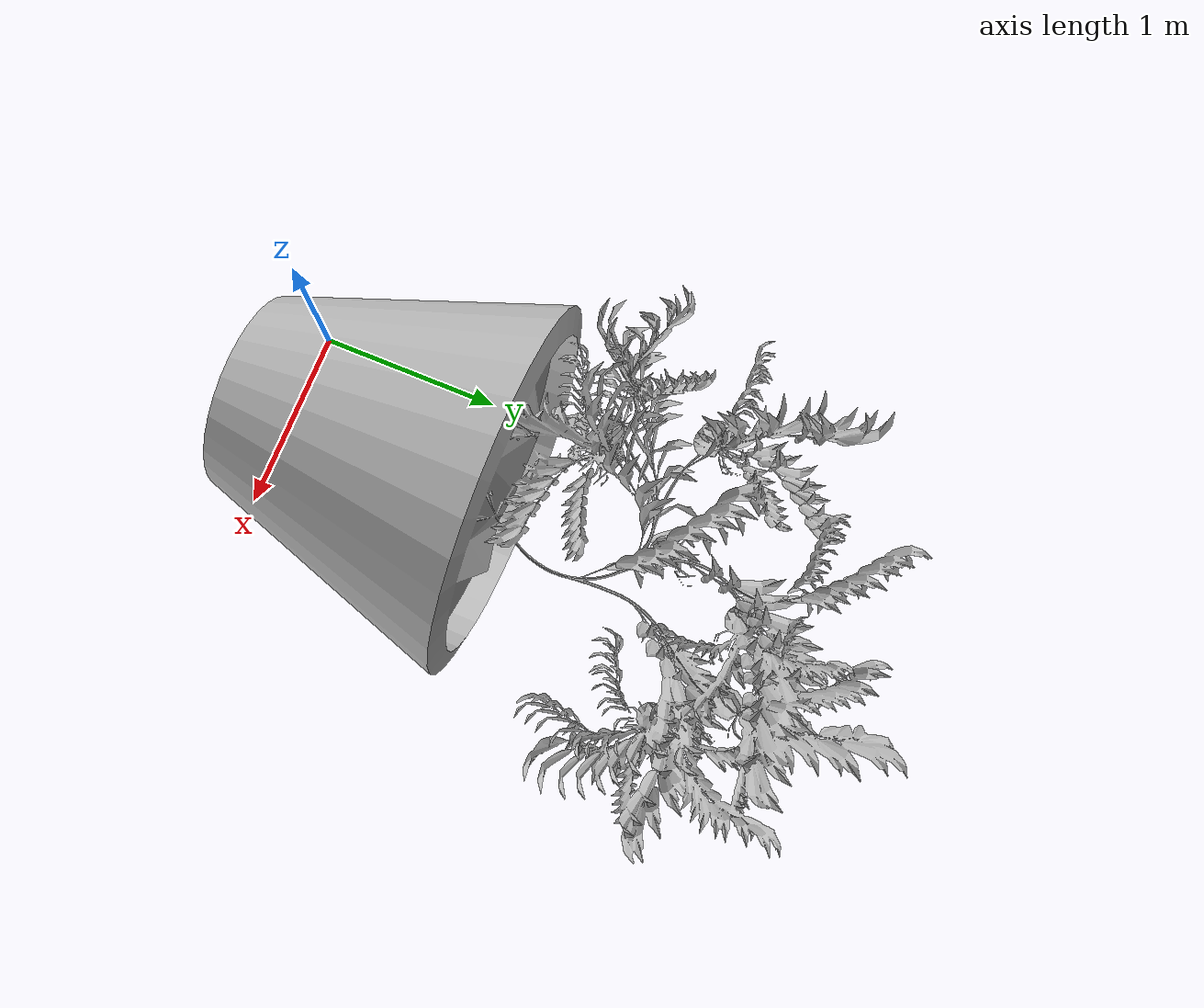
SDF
<?xml version='1.0'?>
<sdf version='1.4'>
  <model name="plant">
    <static>true</static>
    <pose>0 0 0 0 0 0</pose>

    <link name="plant">
      <visual name="plant">
        <geometry>
          <mesh>
            <uri>model://plant/plant.dae</uri>
            <scale>0.5 0.5 0.5</scale>
          </mesh>
        </geometry>
      </visual>
      <collision name="plant">
        <geometry>
          <mesh>
            <uri>model://plant/plant.dae</uri>
            <scale>0.5 0.5 0.5</scale>
          </mesh>
        </geometry>
      </collision>
    </link>

  </model>
</sdf>
